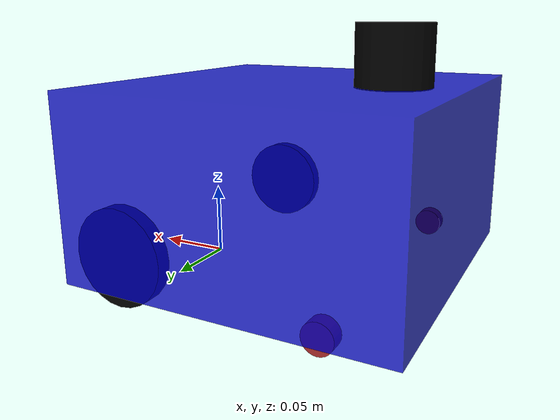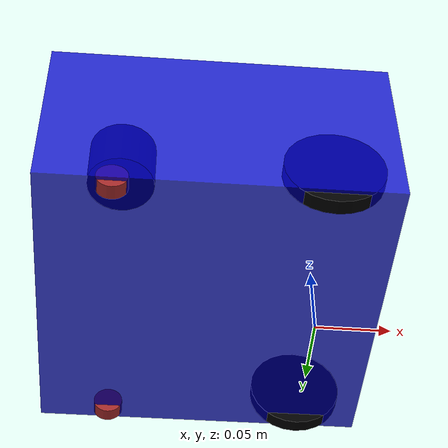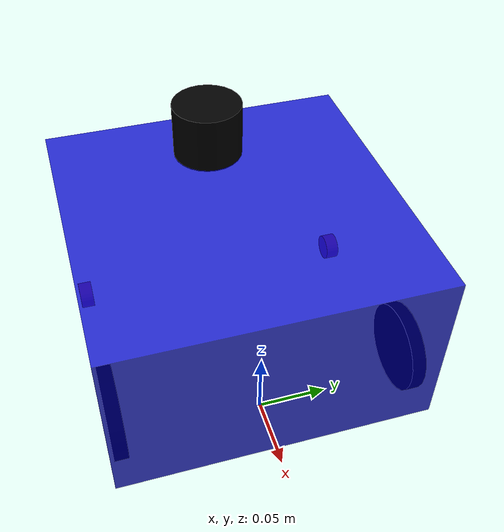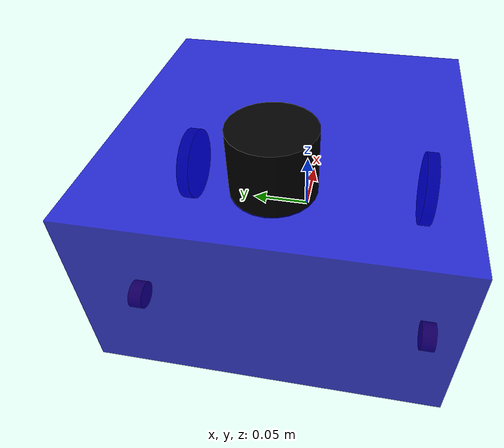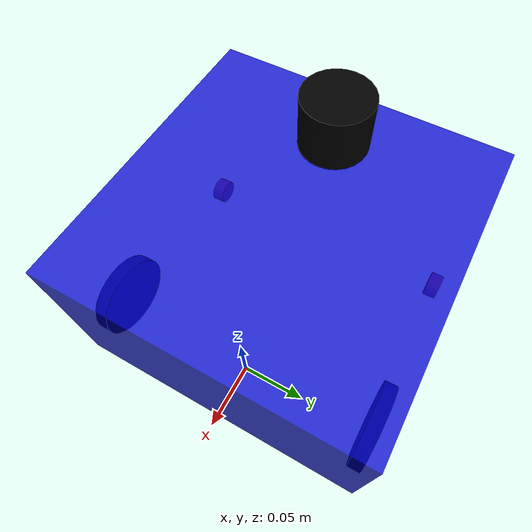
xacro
<?xml version="1.0"?>
<robot xmlns:xacro="http://www.ros.org/wiki/xacro" name="robot">
    <xacro:arg name="prefix" default="" />
    <xacro:include filename="$(find robot_controller)/urdf/robot_description.urdf.xacro" />
    <xacro:include filename="$(find robot_controller)/ros2_control/robot.ros2_control.xacro" />
    <xacro:robot prefix="$(arg prefix)" />
    <xacro:robot_ros2_control name="Robot" prefix="$(arg prefix)" />
</robot>

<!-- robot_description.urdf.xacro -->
<robot xmlns:xacro="http://www.ros.org/wiki/xacro">

    <xacro:macro name="robot" params="prefix">

        <!-- Constants for robot dimensions -->
        <xacro:property name="PI" value="3.1415926535897931" />

        <material name="black">
            <color rgba="0.0 0.0 0.0 1.0"/>
        </material>

        <material name="blue">
            <color rgba="0.0 0.0 0.8 0.8"/>
        </material>

        <material name="brown">
            <color rgba="${165/255} ${42/255} ${42/255} 1.0"/>
        </material>

        <link name="${prefix}base_footprint" />

        <joint name="${prefix}base_joint" type="fixed">
            <parent link="${prefix}base_footprint"/>
            <child link="${prefix}base_link"/>
            <origin xyz="0 0 0.032" rpy="0 0 0"/>
        </joint>

        <!-- Base Link -->
        <link name="${prefix}base_link">
            <visual>
                <origin xyz="-0.07 0 0.038" rpy="0 0 0" />
                <geometry>
                    <box size="0.225 0.225 0.125"/>
                </geometry>
                <material name="blue"/>
            </visual>
            <collision>
                <origin xyz="-0.07 0 0.038" rpy="0 0 0" />
                <geometry>
                    <box size="0.225 0.225 0.125"/>
                </geometry>
            </collision>
        </link>

        <!-- left wheel Link -->
        <joint name="${prefix}left_wheel_joint" type="continuous">
            <parent link="${prefix}base_link"/>
            <child link="${prefix}left_wheel"/>
            <origin xyz="0 0.105 0" rpy="0 0 0"/>
            <axis xyz="0 1 0"/>
            <dynamics damping="0.2"/>
        </joint>
        <link name="${prefix}left_wheel">
            <collision>
                <origin xyz="0 0 0" rpy="${pi/2} 0 0"/>
                <geometry>
                    <cylinder length="0.01" radius="0.032"/>
                </geometry>
            </collision>
            <visual>
                <origin xyz="0 0 0" rpy="${pi/2} 0 0"/>
                <geometry>
                    <cylinder length="0.01" radius="0.032"/>
                </geometry>
                <material name="black"/>
            </visual>
        </link>

        <!-- right wheel Link -->
        <joint name="${prefix}right_wheel_joint" type="continuous">
            <parent link="${prefix}base_link"/>
            <child link="${prefix}right_wheel"/>
            <origin xyz="0 -0.105 0" rpy="0 0 0"/>
            <axis xyz="0 1 0"/>
            <dynamics damping="0.2"/>
        </joint>
        <link name="${prefix}right_wheel">
            <collision>
                <origin xyz="0 0 0" rpy="${pi/2} 0 0"/>
                <geometry>
                    <cylinder length="0.01" radius="0.032"/>
                </geometry>
            </collision>
            <visual>
                <origin xyz="0 0 0" rpy="${pi/2} 0 0"/>
                <geometry>
                    <cylinder length="0.01" radius="0.032"/>
                </geometry>
                <material name="black"/>
            </visual>
        </link>

        <joint name="${prefix}right_free_wheel_joint" type="fixed">
            <parent link="${prefix}base_link"/>
            <child link="${prefix}right_free_wheel"/>
            <origin xyz="-0.135 -0.105 -0.02" rpy="0 0 0"/>
        </joint>
        <link name="${prefix}right_free_wheel">
            <visual>
                <origin xyz="0 0 0" rpy="${pi/2} 0 0"/>
                <geometry>
                    <cylinder length="0.01" radius="0.01"/>
                </geometry>
                <material name="brown"/>
            </visual>
        </link>

        <joint name="${prefix}left_free_wheel_joint" type="fixed">
            <parent link="${prefix}base_link"/>
            <child link="${prefix}left_free_wheel"/>
            <origin xyz="-0.135 0.105 -0.02" rpy="0 0 0"/>
        </joint>
        <link name="${prefix}left_free_wheel">
            <visual>
                <origin xyz="0 0 0" rpy="${pi/2} 0 0"/>
                <geometry>
                    <cylinder length="0.01" radius="0.01"/>
                </geometry>
                <material name="brown"/>
            </visual>
        </link>

        <link name="${prefix}imu_link" />
        <joint name="${prefix}imu_joint" type="fixed">
            <parent link="${prefix}base_link"/>
            <child link="${prefix}imu_link"/>
            <origin xyz="-0.062 -0.064 0.01" rpy="0 0 0"/>
        </joint>

        <link name="${prefix}laser_link">
            <visual>
                <origin xyz="0 0 -0.02" rpy="0 0 0" />
                <geometry>
                    <cylinder length="0.04" radius="0.025"/>
                </geometry>
                <material name="black"/>
            </visual>
        </link>
        <joint name="${prefix}laser_joint" type="fixed">
            <parent link="${prefix}base_link"/>
            <child link="${prefix}laser_link"/>
            <origin xyz="-0.135 0 0.14" rpy="0 0 ${PI}"/>
        </joint>

    </xacro:macro>

</robot>
